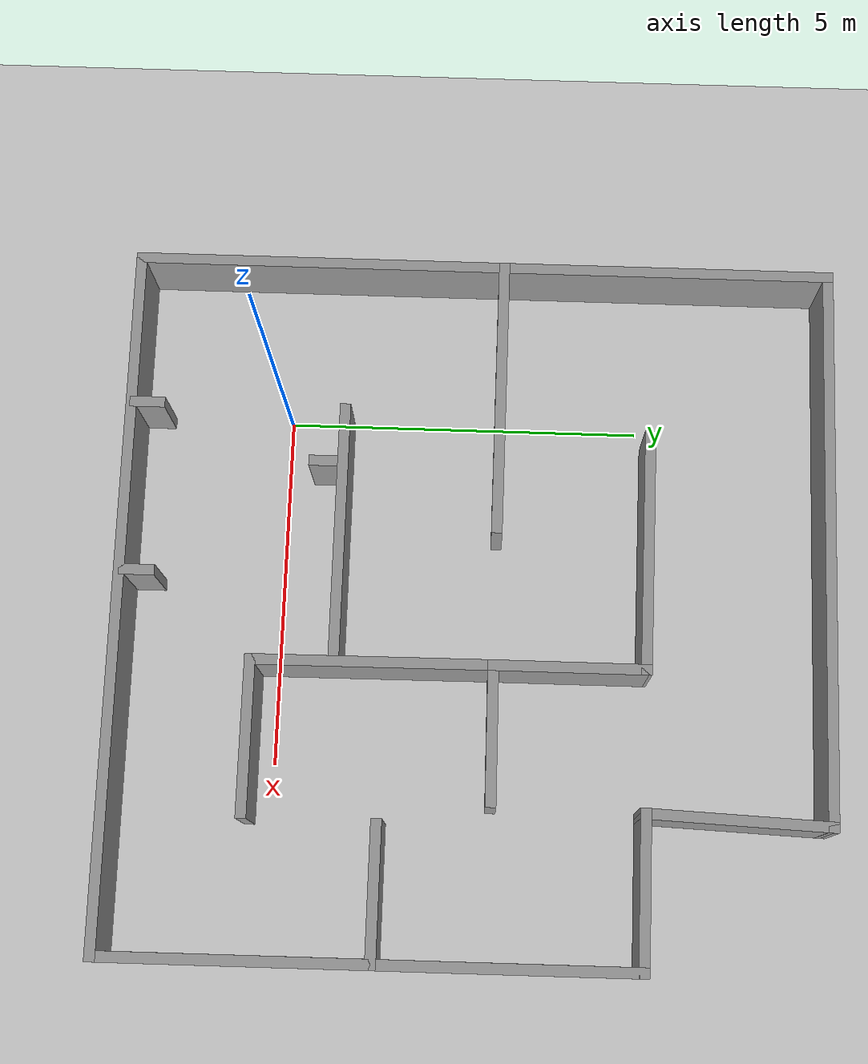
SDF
<sdf version="1.7">
 <world name="default">
  <light name="sun" type="directional">
   <pose>0 0 10 0 -0 0</pose>
   <diffuse>0.8 0.8 0.8 1</diffuse>
   <specular>0.2 0.2 0.2 1</specular>
   <attenuation>
    <range>1000</range>
    <constant>0.9</constant>
    <linear>0.01</linear>
    <quadratic>0.001</quadratic>
   </attenuation>
   <direction>-0.5 0.1 -0.9</direction>
   <spot><inner_angle>0</inner_angle><outer_angle>0</outer_angle><falloff>0</falloff></spot>
  </light>
  <model name="ground_plane">
   <static>1</static>
   <link name="link">
    <collision name="collision">
     <geometry><plane><normal>0 0 1</normal><size>100 100</size></plane></geometry>
     <surface>
      <contact><collide_bitmask>65535</collide_bitmask></contact>
      <friction><ode><mu>100</mu><mu2>50</mu2></ode></friction>
     </surface>
    </collision>
    <visual name="visual">
     <cast_shadows>0</cast_shadows>
     <geometry><plane><normal>0 0 1</normal><size>100 100</size></plane></geometry>
     <material>
      <script><uri>file://media/materials/scripts/gazebo.material</uri><name>Gazebo/Grey</name></script>
     </material>
    </visual>
   </link>
  </model>
  <gravity>0 0 -9.8</gravity>
  <magnetic_field>6e-06 2.3e-05 -4.2e-05</magnetic_field>
  <atmosphere type="adiabatic"/>
  <physics type="ode">
   <max_step_size>0.001</max_step_size>
   <real_time_factor>1</real_time_factor>
   <real_time_update_rate>1000</real_time_update_rate>
  </physics>
  <scene><ambient>0.4 0.4 0.4 1</ambient><background>0.7 0.7 0.7 1</background><shadows>1</shadows></scene>
  <audio><device>default</device></audio>
  <spherical_coordinates>
   <surface_model>EARTH_WGS84</surface_model>
   <latitude_deg>0</latitude_deg>
   <longitude_deg>0</longitude_deg>
   <elevation>0</elevation>
   <heading_deg>0</heading_deg>
  </spherical_coordinates>
  <model name="Untitled">
   <pose>2.78604 2.73638 0 0 -0 0</pose>
   <link name="Wall_0">
    <collision name="Wall_0_Collision">
     <geometry><box><size>10 0.15 1</size></box></geometry>
     <pose>0 0 0.5 0 -0 0</pose>
    </collision>
    <visual name="Wall_0_Visual">
     <pose>0 0 0.5 0 -0 0</pose>
     <geometry><box><size>10 0.15 1</size></box></geometry>
     <material>
      <script><uri>file://media/materials/scripts/gazebo.material</uri><name>Gazebo/Grey</name></script>
      <ambient>1 1 1 1</ambient>
     </material>
     <meta><layer>0</layer></meta>
    </visual>
    <pose>-4.92304 -0.001378 0 0 -0 1.5708</pose>
   </link>
   <link name="Wall_13">
    <collision name="Wall_13_Collision">
     <geometry><box><size>2 0.15 1</size></box></geometry>
     <pose>0 0 0.5 0 -0 0</pose>
    </collision>
    <visual name="Wall_13_Visual">
     <pose>0 0 0.5 0 -0 0</pose>
     <geometry><box><size>2 0.15 1</size></box></geometry>
     <material>
      <script><uri>file://media/materials/scripts/gazebo.material</uri><name>Gazebo/Grey</name></script>
      <ambient>1 1 1 1</ambient>
     </material>
     <meta><layer>0</layer></meta>
    </visual>
    <pose>3.99497 -1.21838 0 0 -0 3.14159</pose>
   </link>
   <link name="Wall_20">
    <collision name="Wall_20_Collision">
     <geometry><box><size>3.48304 0.15 1</size></box></geometry>
     <pose>0 0 0.5 0 -0 0</pose>
    </collision>
    <visual name="Wall_20_Visual">
     <pose>0 0 0.5 0 -0 0</pose>
     <geometry><box><size>3.48304 0.15 1</size></box></geometry>
     <material>
      <script><uri>file://media/materials/scripts/gazebo.material</uri><name>Gazebo/Grey</name></script>
      <ambient>1 1 1 1</ambient>
     </material>
     <meta><layer>0</layer></meta>
    </visual>
    <pose>0.870465 -1.37488 0 0 -0 -1.5657</pose>
   </link>
   <link name="Wall_21">
    <collision name="Wall_21_Collision">
     <geometry><box><size>2.25 0.15 1</size></box></geometry>
     <pose>0 0 0.5 0 -0 0</pose>
    </collision>
    <visual name="Wall_21_Visual">
     <pose>0 0 0.5 0 -0 0</pose>
     <geometry><box><size>2.25 0.15 1</size></box></geometry>
     <material>
      <script><uri>file://media/materials/scripts/gazebo.material</uri><name>Gazebo/Grey</name></script>
      <ambient>1 1 1 1</ambient>
     </material>
     <meta><layer>0</layer></meta>
    </visual>
    <pose>1.92897 -3.04138 0 0 -0 0</pose>
   </link>
   <link name="Wall_23">
    <collision name="Wall_23_Collision">
     <geometry><box><size>2.01782 0.15 1</size></box></geometry>
     <pose>0 0 0.5 0 -0 0</pose>
    </collision>
    <visual name="Wall_23_Visual">
     <pose>0 0 0.5 0 -0 0</pose>
     <geometry><box><size>2.01782 0.15 1</size></box></geometry>
     <material>
      <script><uri>file://media/materials/scripts/gazebo.material</uri><name>Gazebo/Grey</name></script>
      <ambient>1 1 1 1</ambient>
     </material>
     <meta><layer>0</layer></meta>
    </visual>
    <pose>1.79547 0.300122 0 0 -0 0.009105</pose>
   </link>
   <link name="Wall_25">
    <collision name="Wall_25_Collision">
     <geometry><box><size>2.25 0.15 1</size></box></geometry>
     <pose>0 0 0.5 0 -0 0</pose>
    </collision>
    <visual name="Wall_25_Visual">
     <pose>0 0 0.5 0 -0 0</pose>
     <geometry><box><size>2.25 0.15 1</size></box></geometry>
     <material>
      <script><uri>file://media/materials/scripts/gazebo.material</uri><name>Gazebo/Grey</name></script>
      <ambient>1 1 1 1</ambient>
     </material>
     <meta><layer>0</layer></meta>
    </visual>
    <pose>3.86997 2.40162 0 0 -0 3.14159</pose>
   </link>
   <link name="Wall_28">
    <collision name="Wall_28_Collision">
     <geometry><box><size>2.24961 0.15 1</size></box></geometry>
     <pose>0 0 0.5 0 -0 0</pose>
    </collision>
    <visual name="Wall_28_Visual">
     <pose>0 0 0.5 0 -0 0</pose>
     <geometry><box><size>2.24961 0.15 1</size></box></geometry>
     <material>
      <script><uri>file://media/materials/scripts/gazebo.material</uri><name>Gazebo/Grey</name></script>
      <ambient>1 1 1 1</ambient>
     </material>
     <meta><layer>0</layer></meta>
    </visual>
    <pose>0.861964 1.34112 0 0 -0 1.5708</pose>
   </link>
   <link name="Wall_29">
    <collision name="Wall_29_Collision">
     <geometry><box><size>3.48269 0.15 1</size></box></geometry>
     <pose>0 0 0.5 0 -0 0</pose>
    </collision>
    <visual name="Wall_29_Visual">
     <pose>0 0 0.5 0 -0 0</pose>
     <geometry><box><size>3.48269 0.15 1</size></box></geometry>
     <material>
      <script><uri>file://media/materials/scripts/gazebo.material</uri><name>Gazebo/Grey</name></script>
      <ambient>1 1 1 1</ambient>
     </material>
     <meta><layer>0</layer></meta>
    </visual>
    <pose>-0.804536 2.39962 0 0 -0 3.13619</pose>
   </link>
   <link name="Wall_3">
    <collision name="Wall_3_Collision">
     <geometry><box><size>10 0.15 1</size></box></geometry>
     <pose>0 0 0.5 0 -0 0</pose>
    </collision>
    <visual name="Wall_3_Visual">
     <pose>0 0 0.5 0 -0 0</pose>
     <geometry><box><size>10 0.15 1</size></box></geometry>
     <material>
      <script><uri>file://media/materials/scripts/gazebo.material</uri><name>Gazebo/Grey</name></script>
      <ambient>1 1 1 1</ambient>
     </material>
     <meta><layer>0</layer></meta>
    </visual>
    <pose>0.001965 -4.92638 0 0 -0 3.14159</pose>
   </link>
   <link name="Wall_31">
    <collision name="Wall_31_Collision">
     <geometry><box><size>4 0.15 1</size></box></geometry>
     <pose>0 0 0.5 0 -0 0</pose>
    </collision>
    <visual name="Wall_31_Visual">
     <pose>0 0 0.5 0 -0 0</pose>
     <geometry><box><size>4 0.15 1</size></box></geometry>
     <material>
      <script><uri>file://media/materials/scripts/gazebo.material</uri><name>Gazebo/Grey</name></script>
      <ambient>1 1 1 1</ambient>
     </material>
     <meta><layer>0</layer></meta>
    </visual>
    <pose>-3.00204 0.285622 0 0 -0 0</pose>
   </link>
   <link name="Wall_33">
    <collision name="Wall_33_Collision">
     <geometry><box><size>3.75 0.15 1</size></box></geometry>
     <pose>0 0 0.5 0 -0 0</pose>
    </collision>
    <visual name="Wall_33_Visual">
     <pose>0 0 0.5 0 -0 0</pose>
     <geometry><box><size>3.75 0.15 1</size></box></geometry>
     <material>
      <script><uri>file://media/materials/scripts/gazebo.material</uri><name>Gazebo/Grey</name></script>
      <ambient>1 1 1 1</ambient>
     </material>
     <meta><layer>0</layer></meta>
    </visual>
    <pose>-0.938035 -1.90038 0 0 -0 3.14159</pose>
   </link>
   <link name="Wall_35">
    <collision name="Wall_35_Collision">
     <geometry><box><size>0.5 0.15 1</size></box></geometry>
     <pose>0 0 0.5 0 -0 0</pose>
    </collision>
    <visual name="Wall_35_Visual">
     <pose>0 0 0.5 0 -0 0</pose>
     <geometry><box><size>0.5 0.15 1</size></box></geometry>
     <material>
      <script><uri>file://media/materials/scripts/gazebo.material</uri><name>Gazebo/Grey</name></script>
      <ambient>1 1 1 1</ambient>
     </material>
     <meta><layer>0</layer></meta>
    </visual>
    <pose>-2.75804 -4.69938 0 0 -0 1.5708</pose>
   </link>
   <link name="Wall_38">
    <collision name="Wall_38_Collision">
     <geometry><box><size>0.5 0.15 1</size></box></geometry>
     <pose>0 0 0.5 0 -0 0</pose>
    </collision>
    <visual name="Wall_38_Visual">
     <pose>0 0 0.5 0 -0 0</pose>
     <geometry><box><size>0.5 0.15 1</size></box></geometry>
     <material>
      <script><uri>file://media/materials/scripts/gazebo.material</uri><name>Gazebo/Grey</name></script>
      <ambient>1 1 1 1</ambient>
     </material>
     <meta><layer>0</layer></meta>
    </visual>
    <pose>-1.97104 -2.12838 0 0 -0 -1.5708</pose>
   </link>
   <link name="Wall_40">
    <collision name="Wall_40_Collision">
     <geometry><box><size>0.5 0.15 1</size></box></geometry>
     <pose>0 0 0.5 0 -0 0</pose>
    </collision>
    <visual name="Wall_40_Visual">
     <pose>0 0 0.5 0 -0 0</pose>
     <geometry><box><size>0.5 0.15 1</size></box></geometry>
     <material>
      <script><uri>file://media/materials/scripts/gazebo.material</uri><name>Gazebo/Grey</name></script>
      <ambient>1 1 1 1</ambient>
     </material>
     <meta><layer>0</layer></meta>
    </visual>
    <pose>-0.327035 -4.68138 0 0 -0 1.5708</pose>
   </link>
   <link name="Wall_42">
    <collision name="Wall_42_Collision">
     <geometry><box><size>7.47829 0.15 1</size></box></geometry>
     <pose>0 0 0.5 0 -0 0</pose>
    </collision>
    <visual name="Wall_42_Visual">
     <pose>0 0 0.5 0 -0 0</pose>
     <geometry><box><size>7.47829 0.15 1</size></box></geometry>
     <material>
      <script><uri>file://media/materials/scripts/gazebo.material</uri><name>Gazebo/Grey</name></script>
      <ambient>1 1 1 1</ambient>
     </material>
     <meta><layer>0</layer></meta>
    </visual>
    <pose>4.92346 -1.26238 0 0 -0 -1.56984</pose>
   </link>
   <link name="Wall_47">
    <collision name="Wall_47_Collision">
     <geometry><box><size>8 0.15 1</size></box></geometry>
     <pose>0 0 0.5 0 -0 0</pose>
    </collision>
    <visual name="Wall_47_Visual">
     <pose>0 0 0.5 0 -0 0</pose>
     <geometry><box><size>8 0.15 1</size></box></geometry>
     <material>
      <script><uri>file://media/materials/scripts/gazebo.material</uri><name>Gazebo/Grey</name></script>
      <ambient>1 1 1 1</ambient>
     </material>
     <meta><layer>0</layer></meta>
    </visual>
    <pose>-0.998036 4.92362 0 0 -0 0</pose>
   </link>
   <link name="Wall_48">
    <collision name="Wall_48_Collision">
     <geometry><box><size>2.67398 0.15 1</size></box></geometry>
     <pose>0 0 0.5 0 -0 0</pose>
    </collision>
    <visual name="Wall_48_Visual">
     <pose>0 0 0.5 0 -0 0</pose>
     <geometry><box><size>2.67398 0.15 1</size></box></geometry>
     <material>
      <script><uri>file://media/materials/scripts/gazebo.material</uri><name>Gazebo/Grey</name></script>
      <ambient>1 1 1 1</ambient>
     </material>
     <meta><layer>0</layer></meta>
    </visual>
    <pose>2.87346 3.66262 0 0 -0 -1.6132</pose>
   </link>
   <static>1</static>
  </model>
 </world>
</sdf>
